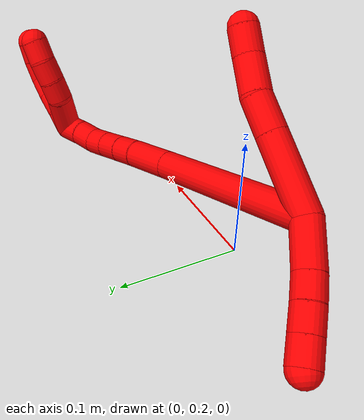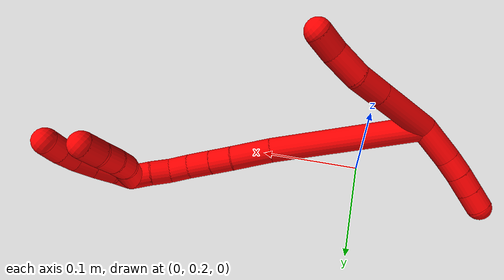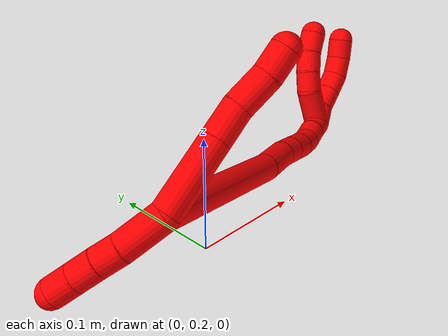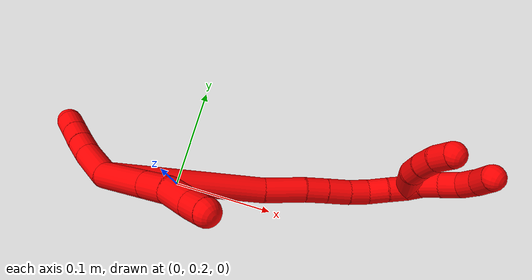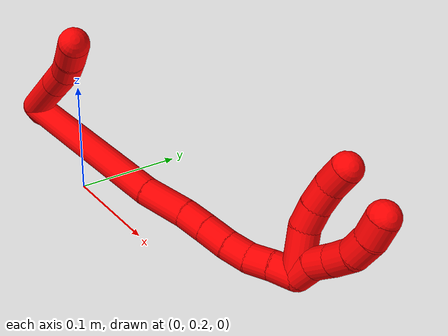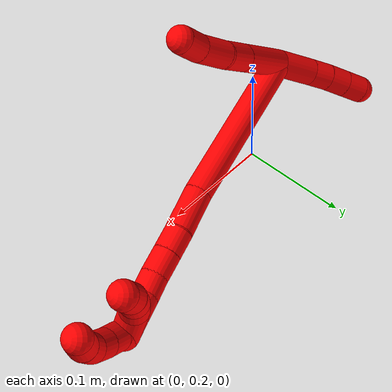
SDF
<sdf version="1.7">
 <world name="default">
  <model name="2">
   <static>0</static>
   <link name="2">
    <collision name="collision-cylinder-e_1_2_8">
     <pose>-0.001099 -0.009051 -0.030658 2.85454 -0.034361 -0.236669</pose>
     <geometry><cylinder><radius>0.0125</radius><length>0.06397</length></cylinder></geometry>
     <surface>
      <friction><ode><mu>1.16</mu><mu2>1.16</mu2><slip1>0</slip1><slip2>0</slip2></ode></friction>
      <contact><ode><kp>1e+06</kp><kd>1</kd><max_vel>0</max_vel><min_depth>0.001</min_depth></ode></contact>
     </surface>
    </collision>
    <visual name="visual-cylinder-e_1_2_8">
     <pose>-0.001099 -0.009051 -0.030658 2.85454 -0.034361 -0.236669</pose>
     <geometry><cylinder><radius>0.0125</radius><length>0.06397</length></cylinder></geometry>
     <material><ambient>1 0 0 1</ambient></material>
    </visual>
    <collision name="collision-cylinder-e_2_8_9">
     <pose>-0.002717 -0.022327 -0.07567 2.85525 -0.034727 -0.239768</pose>
     <geometry><cylinder><radius>0.0125</radius><length>0.029943</length></cylinder></geometry>
     <surface>
      <friction><ode><mu>1.16</mu><mu2>1.16</mu2><slip1>0</slip1><slip2>0</slip2></ode></friction>
      <contact><ode><kp>1e+06</kp><kd>1</kd><max_vel>0</max_vel><min_depth>0.001</min_depth></ode></contact>
     </surface>
    </collision>
    <visual name="visual-cylinder-e_2_8_9">
     <pose>-0.002717 -0.022327 -0.07567 2.85525 -0.034727 -0.239768</pose>
     <geometry><cylinder><radius>0.0125</radius><length>0.029943</length></cylinder></geometry>
     <material><ambient>1 0 0 1</ambient></material>
    </visual>
    <collision name="collision-cylinder-e_3_9_10">
     <pose>-0.004088 -0.027589 -0.105888 3.0764 -0.05345 -1.37343</pose>
     <geometry><cylinder><radius>0.0125</radius><length>0.031841</length></cylinder></geometry>
     <surface>
      <friction><ode><mu>1.16</mu><mu2>1.16</mu2><slip1>0</slip1><slip2>0</slip2></ode></friction>
      <contact><ode><kp>1e+06</kp><kd>1</kd><max_vel>0</max_vel><min_depth>0.001</min_depth></ode></contact>
     </surface>
    </collision>
    <visual name="visual-cylinder-e_3_9_10">
     <pose>-0.004088 -0.027589 -0.105888 3.0764 -0.05345 -1.37343</pose>
     <geometry><cylinder><radius>0.0125</radius><length>0.031841</length></cylinder></geometry>
     <material><ambient>1 0 0 1</ambient></material>
    </visual>
    <collision name="collision-cylinder-e_4_10_6">
     <pose>-0.00748 -0.03056 -0.133446 2.97762 -0.211266 -1.82299</pose>
     <geometry><cylinder><radius>0.0125</radius><length>0.024245</length></cylinder></geometry>
     <surface>
      <friction><ode><mu>1.16</mu><mu2>1.16</mu2><slip1>0</slip1><slip2>0</slip2></ode></friction>
      <contact><ode><kp>1e+06</kp><kd>1</kd><max_vel>0</max_vel><min_depth>0.001</min_depth></ode></contact>
     </surface>
    </collision>
    <visual name="visual-cylinder-e_4_10_6">
     <pose>-0.00748 -0.03056 -0.133446 2.97762 -0.211266 -1.82299</pose>
     <geometry><cylinder><radius>0.0125</radius><length>0.024245</length></cylinder></geometry>
     <material><ambient>1 0 0 1</ambient></material>
    </visual>
    <collision name="collision-cylinder-e_1_2_11">
     <pose>0.000704 -0.002441 0.019232 0.126237 0.036302 0.002295</pose>
     <geometry><cylinder><radius>0.0125</radius><length>0.038799</length></cylinder></geometry>
     <surface>
      <friction><ode><mu>1.16</mu><mu2>1.16</mu2><slip1>0</slip1><slip2>0</slip2></ode></friction>
      <contact><ode><kp>1e+06</kp><kd>1</kd><max_vel>0</max_vel><min_depth>0.001</min_depth></ode></contact>
     </surface>
    </collision>
    <visual name="visual-cylinder-e_1_2_11">
     <pose>0.000704 -0.002441 0.019232 0.126237 0.036302 0.002295</pose>
     <geometry><cylinder><radius>0.0125</radius><length>0.038799</length></cylinder></geometry>
     <material><ambient>1 0 0 1</ambient></material>
    </visual>
    <collision name="collision-cylinder-e_2_11_12">
     <pose>0.001757 -0.007181 0.048277 0.230177 0.034644 0.004005</pose>
     <geometry><cylinder><radius>0.0125</radius><length>0.020168</length></cylinder></geometry>
     <surface>
      <friction><ode><mu>1.16</mu><mu2>1.16</mu2><slip1>0</slip1><slip2>0</slip2></ode></friction>
      <contact><ode><kp>1e+06</kp><kd>1</kd><max_vel>0</max_vel><min_depth>0.001</min_depth></ode></contact>
     </surface>
    </collision>
    <visual name="visual-cylinder-e_2_11_12">
     <pose>0.001757 -0.007181 0.048277 0.230177 0.034644 0.004005</pose>
     <geometry><cylinder><radius>0.0125</radius><length>0.020168</length></cylinder></geometry>
     <material><ambient>1 0 0 1</ambient></material>
    </visual>
    <collision name="collision-cylinder-e_3_12_13">
     <pose>0.003053 -0.011861 0.068028 0.235152 0.092291 0.010909</pose>
     <geometry><cylinder><radius>0.0125</radius><length>0.020528</length></cylinder></geometry>
     <surface>
      <friction><ode><mu>1.16</mu><mu2>1.16</mu2><slip1>0</slip1><slip2>0</slip2></ode></friction>
      <contact><ode><kp>1e+06</kp><kd>1</kd><max_vel>0</max_vel><min_depth>0.001</min_depth></ode></contact>
     </surface>
    </collision>
    <visual name="visual-cylinder-e_3_12_13">
     <pose>0.003053 -0.011861 0.068028 0.235152 0.092291 0.010909</pose>
     <geometry><cylinder><radius>0.0125</radius><length>0.020528</length></cylinder></geometry>
     <material><ambient>1 0 0 1</ambient></material>
    </visual>
    <collision name="collision-cylinder-e_4_13_5">
     <pose>0.004968 -0.016624 0.087892 0.235458 0.094701 0.011209</pose>
     <geometry><cylinder><radius>0.0125</radius><length>0.020505</length></cylinder></geometry>
     <surface>
      <friction><ode><mu>1.16</mu><mu2>1.16</mu2><slip1>0</slip1><slip2>0</slip2></ode></friction>
      <contact><ode><kp>1e+06</kp><kd>1</kd><max_vel>0</max_vel><min_depth>0.001</min_depth></ode></contact>
     </surface>
    </collision>
    <visual name="visual-cylinder-e_4_13_5">
     <pose>0.004968 -0.016624 0.087892 0.235458 0.094701 0.011209</pose>
     <geometry><cylinder><radius>0.0125</radius><length>0.020505</length></cylinder></geometry>
     <material><ambient>1 0 0 1</ambient></material>
    </visual>
    <collision name="collision-cylinder-e_1_2_14">
     <pose>0.058619 -0.02341 -0.042469 2.6378 0.879644 2.14064</pose>
     <geometry><cylinder><radius>0.0125</radius><length>0.152155</length></cylinder></geometry>
     <surface>
      <friction><ode><mu>1.16</mu><mu2>1.16</mu2><slip1>0</slip1><slip2>0</slip2></ode></friction>
      <contact><ode><kp>1e+06</kp><kd>1</kd><max_vel>0</max_vel><min_depth>0.001</min_depth></ode></contact>
     </surface>
    </collision>
    <visual name="visual-cylinder-e_1_2_14">
     <pose>0.058619 -0.02341 -0.042469 2.6378 0.879644 2.14064</pose>
     <geometry><cylinder><radius>0.0125</radius><length>0.152155</length></cylinder></geometry>
     <material><ambient>1 0 0 1</ambient></material>
    </visual>
    <collision name="collision-cylinder-e_2_14_15">
     <pose>0.132 -0.05543 -0.096173 2.48775 0.806431 1.79837</pose>
     <geometry><cylinder><radius>0.0125</radius><length>0.040903</length></cylinder></geometry>
     <surface>
      <friction><ode><mu>1.16</mu><mu2>1.16</mu2><slip1>0</slip1><slip2>0</slip2></ode></friction>
      <contact><ode><kp>1e+06</kp><kd>1</kd><max_vel>0</max_vel><min_depth>0.001</min_depth></ode></contact>
     </surface>
    </collision>
    <visual name="visual-cylinder-e_2_14_15">
     <pose>0.132 -0.05543 -0.096173 2.48775 0.806431 1.79837</pose>
     <geometry><cylinder><radius>0.0125</radius><length>0.040903</length></cylinder></geometry>
     <material><ambient>1 0 0 1</ambient></material>
    </visual>
    <collision name="collision-cylinder-e_3_15_16">
     <pose>0.155422 -0.067852 -0.113328 2.56934 0.888044 2.03383</pose>
     <geometry><cylinder><radius>0.0125</radius><length>0.022324</length></cylinder></geometry>
     <surface>
      <friction><ode><mu>1.16</mu><mu2>1.16</mu2><slip1>0</slip1><slip2>0</slip2></ode></friction>
      <contact><ode><kp>1e+06</kp><kd>1</kd><max_vel>0</max_vel><min_depth>0.001</min_depth></ode></contact>
     </surface>
    </collision>
    <visual name="visual-cylinder-e_3_15_16">
     <pose>0.155422 -0.067852 -0.113328 2.56934 0.888044 2.03383</pose>
     <geometry><cylinder><radius>0.0125</radius><length>0.022324</length></cylinder></geometry>
     <material><ambient>1 0 0 1</ambient></material>
    </visual>
    <collision name="collision-cylinder-e_4_16_17">
     <pose>0.173275 -0.07553 -0.12543 2.58293 0.900373 2.07034</pose>
     <geometry><cylinder><radius>0.0125</radius><length>0.023466</length></cylinder></geometry>
     <surface>
      <friction><ode><mu>1.16</mu><mu2>1.16</mu2><slip1>0</slip1><slip2>0</slip2></ode></friction>
      <contact><ode><kp>1e+06</kp><kd>1</kd><max_vel>0</max_vel><min_depth>0.001</min_depth></ode></contact>
     </surface>
    </collision>
    <visual name="visual-cylinder-e_4_16_17">
     <pose>0.173275 -0.07553 -0.12543 2.58293 0.900373 2.07034</pose>
     <geometry><cylinder><radius>0.0125</radius><length>0.023466</length></cylinder></geometry>
     <material><ambient>1 0 0 1</ambient></material>
    </visual>
    <collision name="collision-cylinder-e_5_17_18">
     <pose>0.190039 -0.083695 -0.137041 2.47174 0.829772 1.80414</pose>
     <geometry><cylinder><radius>0.0125</radius><length>0.020522</length></cylinder></geometry>
     <surface>
      <friction><ode><mu>1.16</mu><mu2>1.16</mu2><slip1>0</slip1><slip2>0</slip2></ode></friction>
      <contact><ode><kp>1e+06</kp><kd>1</kd><max_vel>0</max_vel><min_depth>0.001</min_depth></ode></contact>
     </surface>
    </collision>
    <visual name="visual-cylinder-e_5_17_18">
     <pose>0.190039 -0.083695 -0.137041 2.47174 0.829772 1.80414</pose>
     <geometry><cylinder><radius>0.0125</radius><length>0.020522</length></cylinder></geometry>
     <material><ambient>1 0 0 1</ambient></material>
    </visual>
    <collision name="collision-cylinder-e_6_18_19">
     <pose>0.203129 -0.093332 -0.148992 2.45569 0.579922 1.39218</pose>
     <geometry><cylinder><radius>0.0125</radius><length>0.020146</length></cylinder></geometry>
     <surface>
      <friction><ode><mu>1.16</mu><mu2>1.16</mu2><slip1>0</slip1><slip2>0</slip2></ode></friction>
      <contact><ode><kp>1e+06</kp><kd>1</kd><max_vel>0</max_vel><min_depth>0.001</min_depth></ode></contact>
     </surface>
    </collision>
    <visual name="visual-cylinder-e_6_18_19">
     <pose>0.203129 -0.093332 -0.148992 2.45569 0.579922 1.39218</pose>
     <geometry><cylinder><radius>0.0125</radius><length>0.020146</length></cylinder></geometry>
     <material><ambient>1 0 0 1</ambient></material>
    </visual>
    <collision name="collision-cylinder-e_7_19_1">
     <pose>0.215108 -0.103799 -0.161583 2.44001 0.682409 1.54074</pose>
     <geometry><cylinder><radius>0.0125</radius><length>0.020484</length></cylinder></geometry>
     <surface>
      <friction><ode><mu>1.16</mu><mu2>1.16</mu2><slip1>0</slip1><slip2>0</slip2></ode></friction>
      <contact><ode><kp>1e+06</kp><kd>1</kd><max_vel>0</max_vel><min_depth>0.001</min_depth></ode></contact>
     </surface>
    </collision>
    <visual name="visual-cylinder-e_7_19_1">
     <pose>0.215108 -0.103799 -0.161583 2.44001 0.682409 1.54074</pose>
     <geometry><cylinder><radius>0.0125</radius><length>0.020484</length></cylinder></geometry>
     <material><ambient>1 0 0 1</ambient></material>
    </visual>
    <collision name="collision-cylinder-e_1_1_20">
     <pose>0.20534 -0.117478 -0.174834 2.26936 -0.968199 -1.6912</pose>
     <geometry><cylinder><radius>0.0125</radius><length>0.039393</length></cylinder></geometry>
     <surface>
      <friction><ode><mu>1.16</mu><mu2>1.16</mu2><slip1>0</slip1><slip2>0</slip2></ode></friction>
      <contact><ode><kp>1e+06</kp><kd>1</kd><max_vel>0</max_vel><min_depth>0.001</min_depth></ode></contact>
     </surface>
    </collision>
    <visual name="visual-cylinder-e_1_1_20">
     <pose>0.20534 -0.117478 -0.174834 2.26936 -0.968199 -1.6912</pose>
     <geometry><cylinder><radius>0.0125</radius><length>0.039393</length></cylinder></geometry>
     <material><ambient>1 0 0 1</ambient></material>
    </visual>
    <collision name="collision-cylinder-e_2_20_21">
     <pose>0.183102 -0.131285 -0.188042 2.42437 -0.64441 -1.45526</pose>
     <geometry><cylinder><radius>0.0125</radius><length>0.020011</length></cylinder></geometry>
     <surface>
      <friction><ode><mu>1.16</mu><mu2>1.16</mu2><slip1>0</slip1><slip2>0</slip2></ode></friction>
      <contact><ode><kp>1e+06</kp><kd>1</kd><max_vel>0</max_vel><min_depth>0.001</min_depth></ode></contact>
     </surface>
    </collision>
    <visual name="visual-cylinder-e_2_20_21">
     <pose>0.183102 -0.131285 -0.188042 2.42437 -0.64441 -1.45526</pose>
     <geometry><cylinder><radius>0.0125</radius><length>0.020011</length></cylinder></geometry>
     <material><ambient>1 0 0 1</ambient></material>
    </visual>
    <collision name="collision-cylinder-e_3_21_22">
     <pose>0.172096 -0.142032 -0.201084 2.47747 -0.511171 -1.2969</pose>
     <geometry><cylinder><radius>0.0125</radius><length>0.020424</length></cylinder></geometry>
     <surface>
      <friction><ode><mu>1.16</mu><mu2>1.16</mu2><slip1>0</slip1><slip2>0</slip2></ode></friction>
      <contact><ode><kp>1e+06</kp><kd>1</kd><max_vel>0</max_vel><min_depth>0.001</min_depth></ode></contact>
     </surface>
    </collision>
    <visual name="visual-cylinder-e_3_21_22">
     <pose>0.172096 -0.142032 -0.201084 2.47747 -0.511171 -1.2969</pose>
     <geometry><cylinder><radius>0.0125</radius><length>0.020424</length></cylinder></geometry>
     <material><ambient>1 0 0 1</ambient></material>
    </visual>
    <collision name="collision-cylinder-e_4_22_4">
     <pose>0.163546 -0.152093 -0.216355 2.63601 -0.360061 -1.22757</pose>
     <geometry><cylinder><radius>0.0125</radius><length>0.020172</length></cylinder></geometry>
     <surface>
      <friction><ode><mu>1.16</mu><mu2>1.16</mu2><slip1>0</slip1><slip2>0</slip2></ode></friction>
      <contact><ode><kp>1e+06</kp><kd>1</kd><max_vel>0</max_vel><min_depth>0.001</min_depth></ode></contact>
     </surface>
    </collision>
    <visual name="visual-cylinder-e_4_22_4">
     <pose>0.163546 -0.152093 -0.216355 2.63601 -0.360061 -1.22757</pose>
     <geometry><cylinder><radius>0.0125</radius><length>0.020172</length></cylinder></geometry>
     <material><ambient>1 0 0 1</ambient></material>
    </visual>
    <collision name="collision-cylinder-e_1_1_23">
     <pose>0.218831 -0.114044 -0.175801 2.58096 -0.277099 -0.902095</pose>
     <geometry><cylinder><radius>0.0125</radius><length>0.02</length></cylinder></geometry>
     <surface>
      <friction><ode><mu>1.16</mu><mu2>1.16</mu2><slip1>0</slip1><slip2>0</slip2></ode></friction>
      <contact><ode><kp>1e+06</kp><kd>1</kd><max_vel>0</max_vel><min_depth>0.001</min_depth></ode></contact>
     </surface>
    </collision>
    <visual name="visual-cylinder-e_1_1_23">
     <pose>0.218831 -0.114044 -0.175801 2.58096 -0.277099 -0.902095</pose>
     <geometry><cylinder><radius>0.0125</radius><length>0.02</length></cylinder></geometry>
     <material><ambient>1 0 0 1</ambient></material>
    </visual>
    <collision name="collision-cylinder-e_2_23_24">
     <pose>0.216471 -0.123499 -0.192948 2.69223 0.037521 0.163829</pose>
     <geometry><cylinder><radius>0.0125</radius><length>0.02</length></cylinder></geometry>
     <surface>
      <friction><ode><mu>1.16</mu><mu2>1.16</mu2><slip1>0</slip1><slip2>0</slip2></ode></friction>
      <contact><ode><kp>1e+06</kp><kd>1</kd><max_vel>0</max_vel><min_depth>0.001</min_depth></ode></contact>
     </surface>
    </collision>
    <visual name="visual-cylinder-e_2_23_24">
     <pose>0.216471 -0.123499 -0.192948 2.69223 0.037521 0.163829</pose>
     <geometry><cylinder><radius>0.0125</radius><length>0.02</length></cylinder></geometry>
     <material><ambient>1 0 0 1</ambient></material>
    </visual>
    <collision name="collision-cylinder-e_3_24_25">
     <pose>0.216413 -0.131988 -0.211037 2.71343 -0.043317 -0.198615</pose>
     <geometry><cylinder><radius>0.0125</radius><length>0.02</length></cylinder></geometry>
     <surface>
      <friction><ode><mu>1.16</mu><mu2>1.16</mu2><slip1>0</slip1><slip2>0</slip2></ode></friction>
      <contact><ode><kp>1e+06</kp><kd>1</kd><max_vel>0</max_vel><min_depth>0.001</min_depth></ode></contact>
     </surface>
    </collision>
    <visual name="visual-cylinder-e_3_24_25">
     <pose>0.216413 -0.131988 -0.211037 2.71343 -0.043317 -0.198615</pose>
     <geometry><cylinder><radius>0.0125</radius><length>0.02</length></cylinder></geometry>
     <material><ambient>1 0 0 1</ambient></material>
    </visual>
    <collision name="collision-cylinder-e_4_25_26">
     <pose>0.212331 -0.140719 -0.22823 2.62691 -0.373571 -1.24556</pose>
     <geometry><cylinder><radius>0.0125</radius><length>0.02</length></cylinder></geometry>
     <surface>
      <friction><ode><mu>1.16</mu><mu2>1.16</mu2><slip1>0</slip1><slip2>0</slip2></ode></friction>
      <contact><ode><kp>1e+06</kp><kd>1</kd><max_vel>0</max_vel><min_depth>0.001</min_depth></ode></contact>
     </surface>
    </collision>
    <visual name="visual-cylinder-e_4_25_26">
     <pose>0.212331 -0.140719 -0.22823 2.62691 -0.373571 -1.24556</pose>
     <geometry><cylinder><radius>0.0125</radius><length>0.02</length></cylinder></geometry>
     <material><ambient>1 0 0 1</ambient></material>
    </visual>
    <collision name="collision-cylinder-e_5_26_3">
     <pose>0.203035 -0.149549 -0.243411 2.60105 -0.599914 -1.68065</pose>
     <geometry><cylinder><radius>0.0125</radius><length>0.02</length></cylinder></geometry>
     <surface>
      <friction><ode><mu>1.16</mu><mu2>1.16</mu2><slip1>0</slip1><slip2>0</slip2></ode></friction>
      <contact><ode><kp>1e+06</kp><kd>1</kd><max_vel>0</max_vel><min_depth>0.001</min_depth></ode></contact>
     </surface>
    </collision>
    <visual name="visual-cylinder-e_5_26_3">
     <pose>0.203035 -0.149549 -0.243411 2.60105 -0.599914 -1.68065</pose>
     <geometry><cylinder><radius>0.0125</radius><length>0.02</length></cylinder></geometry>
     <material><ambient>1 0 0 1</ambient></material>
    </visual>
    <collision name="collision-sphere-3">
     <pose>0.19739 -0.153797 -0.250488 0 -0 0</pose>
     <geometry><sphere><radius>0.0125</radius></sphere></geometry>
     <surface>
      <friction><ode><mu>1.16</mu><mu2>1.16</mu2><slip1>0</slip1><slip2>0</slip2></ode></friction>
      <contact><ode><kp>1e+06</kp><kd>1</kd><max_vel>0</max_vel><min_depth>0.001</min_depth></ode></contact>
     </surface>
    </collision>
    <visual name="visual-sphere-3">
     <pose>0.19739 -0.153797 -0.250488 0 -0 0</pose>
     <geometry><sphere><radius>0.0125</radius></sphere></geometry>
     <material><ambient>1 0 0 1</ambient></material>
    </visual>
    <collision name="collision-sphere-26">
     <pose>0.208681 -0.145302 -0.236334 0 -0 0</pose>
     <geometry><sphere><radius>0.0125</radius></sphere></geometry>
     <surface>
      <friction><ode><mu>1.16</mu><mu2>1.16</mu2><slip1>0</slip1><slip2>0</slip2></ode></friction>
      <contact><ode><kp>1e+06</kp><kd>1</kd><max_vel>0</max_vel><min_depth>0.001</min_depth></ode></contact>
     </surface>
    </collision>
    <visual name="visual-sphere-26">
     <pose>0.208681 -0.145302 -0.236334 0 -0 0</pose>
     <geometry><sphere><radius>0.0125</radius></sphere></geometry>
     <material><ambient>1 0 0 1</ambient></material>
    </visual>
    <collision name="collision-sphere-25">
     <pose>0.21598 -0.136136 -0.220126 0 -0 0</pose>
     <geometry><sphere><radius>0.0125</radius></sphere></geometry>
     <surface>
      <friction><ode><mu>1.16</mu><mu2>1.16</mu2><slip1>0</slip1><slip2>0</slip2></ode></friction>
      <contact><ode><kp>1e+06</kp><kd>1</kd><max_vel>0</max_vel><min_depth>0.001</min_depth></ode></contact>
     </surface>
    </collision>
    <visual name="visual-sphere-25">
     <pose>0.21598 -0.136136 -0.220126 0 -0 0</pose>
     <geometry><sphere><radius>0.0125</radius></sphere></geometry>
     <material><ambient>1 0 0 1</ambient></material>
    </visual>
    <collision name="collision-sphere-24">
     <pose>0.216846 -0.12784 -0.201948 0 -0 0</pose>
     <geometry><sphere><radius>0.0125</radius></sphere></geometry>
     <surface>
      <friction><ode><mu>1.16</mu><mu2>1.16</mu2><slip1>0</slip1><slip2>0</slip2></ode></friction>
      <contact><ode><kp>1e+06</kp><kd>1</kd><max_vel>0</max_vel><min_depth>0.001</min_depth></ode></contact>
     </surface>
    </collision>
    <visual name="visual-sphere-24">
     <pose>0.216846 -0.12784 -0.201948 0 -0 0</pose>
     <geometry><sphere><radius>0.0125</radius></sphere></geometry>
     <material><ambient>1 0 0 1</ambient></material>
    </visual>
    <collision name="collision-sphere-23">
     <pose>0.216096 -0.119158 -0.183947 0 -0 0</pose>
     <geometry><sphere><radius>0.0125</radius></sphere></geometry>
     <surface>
      <friction><ode><mu>1.16</mu><mu2>1.16</mu2><slip1>0</slip1><slip2>0</slip2></ode></friction>
      <contact><ode><kp>1e+06</kp><kd>1</kd><max_vel>0</max_vel><min_depth>0.001</min_depth></ode></contact>
     </surface>
    </collision>
    <visual name="visual-sphere-23">
     <pose>0.216096 -0.119158 -0.183947 0 -0 0</pose>
     <geometry><sphere><radius>0.0125</radius></sphere></geometry>
     <material><ambient>1 0 0 1</ambient></material>
    </visual>
    <collision name="collision-sphere-4">
     <pose>0.159993 -0.156665 -0.224614 0 -0 0</pose>
     <geometry><sphere><radius>0.0125</radius></sphere></geometry>
     <surface>
      <friction><ode><mu>1.16</mu><mu2>1.16</mu2><slip1>0</slip1><slip2>0</slip2></ode></friction>
      <contact><ode><kp>1e+06</kp><kd>1</kd><max_vel>0</max_vel><min_depth>0.001</min_depth></ode></contact>
     </surface>
    </collision>
    <visual name="visual-sphere-4">
     <pose>0.159993 -0.156665 -0.224614 0 -0 0</pose>
     <geometry><sphere><radius>0.0125</radius></sphere></geometry>
     <material><ambient>1 0 0 1</ambient></material>
    </visual>
    <collision name="collision-sphere-22">
     <pose>0.1671 -0.147522 -0.208097 0 -0 0</pose>
     <geometry><sphere><radius>0.0125</radius></sphere></geometry>
     <surface>
      <friction><ode><mu>1.16</mu><mu2>1.16</mu2><slip1>0</slip1><slip2>0</slip2></ode></friction>
      <contact><ode><kp>1e+06</kp><kd>1</kd><max_vel>0</max_vel><min_depth>0.001</min_depth></ode></contact>
     </surface>
    </collision>
    <visual name="visual-sphere-22">
     <pose>0.1671 -0.147522 -0.208097 0 -0 0</pose>
     <geometry><sphere><radius>0.0125</radius></sphere></geometry>
     <material><ambient>1 0 0 1</ambient></material>
    </visual>
    <collision name="collision-sphere-21">
     <pose>0.177091 -0.136542 -0.19407 0 -0 0</pose>
     <geometry><sphere><radius>0.0125</radius></sphere></geometry>
     <surface>
      <friction><ode><mu>1.16</mu><mu2>1.16</mu2><slip1>0</slip1><slip2>0</slip2></ode></friction>
      <contact><ode><kp>1e+06</kp><kd>1</kd><max_vel>0</max_vel><min_depth>0.001</min_depth></ode></contact>
     </surface>
    </collision>
    <visual name="visual-sphere-21">
     <pose>0.177091 -0.136542 -0.19407 0 -0 0</pose>
     <geometry><sphere><radius>0.0125</radius></sphere></geometry>
     <material><ambient>1 0 0 1</ambient></material>
    </visual>
    <collision name="collision-sphere-20">
     <pose>0.189112 -0.126027 -0.182014 0 -0 0</pose>
     <geometry><sphere><radius>0.0125</radius></sphere></geometry>
     <surface>
      <friction><ode><mu>1.16</mu><mu2>1.16</mu2><slip1>0</slip1><slip2>0</slip2></ode></friction>
      <contact><ode><kp>1e+06</kp><kd>1</kd><max_vel>0</max_vel><min_depth>0.001</min_depth></ode></contact>
     </surface>
    </collision>
    <visual name="visual-sphere-20">
     <pose>0.189112 -0.126027 -0.182014 0 -0 0</pose>
     <geometry><sphere><radius>0.0125</radius></sphere></geometry>
     <material><ambient>1 0 0 1</ambient></material>
    </visual>
    <collision name="collision-sphere-11">
     <pose>0.001408 -0.004882 0.038465 0 -0 0</pose>
     <geometry><sphere><radius>0.0125</radius></sphere></geometry>
     <surface>
      <friction><ode><mu>1.16</mu><mu2>1.16</mu2><slip1>0</slip1><slip2>0</slip2></ode></friction>
      <contact><ode><kp>1e+06</kp><kd>1</kd><max_vel>0</max_vel><min_depth>0.001</min_depth></ode></contact>
     </surface>
    </collision>
    <visual name="visual-sphere-11">
     <pose>0.001408 -0.004882 0.038465 0 -0 0</pose>
     <geometry><sphere><radius>0.0125</radius></sphere></geometry>
     <material><ambient>1 0 0 1</ambient></material>
    </visual>
    <collision name="collision-sphere-6">
     <pose>-0.010023 -0.032494 -0.14514 0 -0 0</pose>
     <geometry><sphere><radius>0.0125</radius></sphere></geometry>
     <surface>
      <friction><ode><mu>1.16</mu><mu2>1.16</mu2><slip1>0</slip1><slip2>0</slip2></ode></friction>
      <contact><ode><kp>1e+06</kp><kd>1</kd><max_vel>0</max_vel><min_depth>0.001</min_depth></ode></contact>
     </surface>
    </collision>
    <visual name="visual-sphere-6">
     <pose>-0.010023 -0.032494 -0.14514 0 -0 0</pose>
     <geometry><sphere><radius>0.0125</radius></sphere></geometry>
     <material><ambient>1 0 0 1</ambient></material>
    </visual>
    <collision name="collision-sphere-10">
     <pose>-0.004938 -0.028625 -0.121752 0 -0 0</pose>
     <geometry><sphere><radius>0.0125</radius></sphere></geometry>
     <surface>
      <friction><ode><mu>1.16</mu><mu2>1.16</mu2><slip1>0</slip1><slip2>0</slip2></ode></friction>
      <contact><ode><kp>1e+06</kp><kd>1</kd><max_vel>0</max_vel><min_depth>0.001</min_depth></ode></contact>
     </surface>
    </collision>
    <visual name="visual-sphere-10">
     <pose>-0.004938 -0.028625 -0.121752 0 -0 0</pose>
     <geometry><sphere><radius>0.0125</radius></sphere></geometry>
     <material><ambient>1 0 0 1</ambient></material>
    </visual>
    <collision name="collision-sphere-9">
     <pose>-0.003237 -0.026553 -0.090023 0 -0 0</pose>
     <geometry><sphere><radius>0.0125</radius></sphere></geometry>
     <surface>
      <friction><ode><mu>1.16</mu><mu2>1.16</mu2><slip1>0</slip1><slip2>0</slip2></ode></friction>
      <contact><ode><kp>1e+06</kp><kd>1</kd><max_vel>0</max_vel><min_depth>0.001</min_depth></ode></contact>
     </surface>
    </collision>
    <visual name="visual-sphere-9">
     <pose>-0.003237 -0.026553 -0.090023 0 -0 0</pose>
     <geometry><sphere><radius>0.0125</radius></sphere></geometry>
     <material><ambient>1 0 0 1</ambient></material>
    </visual>
    <collision name="collision-sphere-2">
     <geometry><sphere><radius>0.0125</radius></sphere></geometry>
     <surface>
      <friction><ode><mu>1.16</mu><mu2>1.16</mu2><slip1>0</slip1><slip2>0</slip2></ode></friction>
      <contact><ode><kp>1e+06</kp><kd>1</kd><max_vel>0</max_vel><min_depth>0.001</min_depth></ode></contact>
     </surface>
    </collision>
    <visual name="visual-sphere-2">
     <geometry><sphere><radius>0.0125</radius></sphere></geometry>
     <material><ambient>1 0 0 1</ambient></material>
    </visual>
    <collision name="collision-sphere-19">
     <pose>0.208649 -0.098669 -0.155512 0 -0 0</pose>
     <geometry><sphere><radius>0.0125</radius></sphere></geometry>
     <surface>
      <friction><ode><mu>1.16</mu><mu2>1.16</mu2><slip1>0</slip1><slip2>0</slip2></ode></friction>
      <contact><ode><kp>1e+06</kp><kd>1</kd><max_vel>0</max_vel><min_depth>0.001</min_depth></ode></contact>
     </surface>
    </collision>
    <visual name="visual-sphere-19">
     <pose>0.208649 -0.098669 -0.155512 0 -0 0</pose>
     <geometry><sphere><radius>0.0125</radius></sphere></geometry>
     <material><ambient>1 0 0 1</ambient></material>
    </visual>
    <collision name="collision-sphere-8">
     <pose>-0.002198 -0.018101 -0.061316 0 -0 0</pose>
     <geometry><sphere><radius>0.0125</radius></sphere></geometry>
     <surface>
      <friction><ode><mu>1.16</mu><mu2>1.16</mu2><slip1>0</slip1><slip2>0</slip2></ode></friction>
      <contact><ode><kp>1e+06</kp><kd>1</kd><max_vel>0</max_vel><min_depth>0.001</min_depth></ode></contact>
     </surface>
    </collision>
    <visual name="visual-sphere-8">
     <pose>-0.002198 -0.018101 -0.061316 0 -0 0</pose>
     <geometry><sphere><radius>0.0125</radius></sphere></geometry>
     <material><ambient>1 0 0 1</ambient></material>
    </visual>
    <collision name="collision-sphere-12">
     <pose>0.002107 -0.00948 0.058089 0 -0 0</pose>
     <geometry><sphere><radius>0.0125</radius></sphere></geometry>
     <surface>
      <friction><ode><mu>1.16</mu><mu2>1.16</mu2><slip1>0</slip1><slip2>0</slip2></ode></friction>
      <contact><ode><kp>1e+06</kp><kd>1</kd><max_vel>0</max_vel><min_depth>0.001</min_depth></ode></contact>
     </surface>
    </collision>
    <visual name="visual-sphere-12">
     <pose>0.002107 -0.00948 0.058089 0 -0 0</pose>
     <geometry><sphere><radius>0.0125</radius></sphere></geometry>
     <material><ambient>1 0 0 1</ambient></material>
    </visual>
    <collision name="collision-sphere-13">
     <pose>0.003999 -0.014243 0.077968 0 -0 0</pose>
     <geometry><sphere><radius>0.0125</radius></sphere></geometry>
     <surface>
      <friction><ode><mu>1.16</mu><mu2>1.16</mu2><slip1>0</slip1><slip2>0</slip2></ode></friction>
      <contact><ode><kp>1e+06</kp><kd>1</kd><max_vel>0</max_vel><min_depth>0.001</min_depth></ode></contact>
     </surface>
    </collision>
    <visual name="visual-sphere-13">
     <pose>0.003999 -0.014243 0.077968 0 -0 0</pose>
     <geometry><sphere><radius>0.0125</radius></sphere></geometry>
     <material><ambient>1 0 0 1</ambient></material>
    </visual>
    <collision name="collision-sphere-5">
     <pose>0.005938 -0.019005 0.097817 0 -0 0</pose>
     <geometry><sphere><radius>0.0125</radius></sphere></geometry>
     <surface>
      <friction><ode><mu>1.16</mu><mu2>1.16</mu2><slip1>0</slip1><slip2>0</slip2></ode></friction>
      <contact><ode><kp>1e+06</kp><kd>1</kd><max_vel>0</max_vel><min_depth>0.001</min_depth></ode></contact>
     </surface>
    </collision>
    <visual name="visual-sphere-5">
     <pose>0.005938 -0.019005 0.097817 0 -0 0</pose>
     <geometry><sphere><radius>0.0125</radius></sphere></geometry>
     <material><ambient>1 0 0 1</ambient></material>
    </visual>
    <collision name="collision-sphere-14">
     <pose>0.117238 -0.046821 -0.084938 0 -0 0</pose>
     <geometry><sphere><radius>0.0125</radius></sphere></geometry>
     <surface>
      <friction><ode><mu>1.16</mu><mu2>1.16</mu2><slip1>0</slip1><slip2>0</slip2></ode></friction>
      <contact><ode><kp>1e+06</kp><kd>1</kd><max_vel>0</max_vel><min_depth>0.001</min_depth></ode></contact>
     </surface>
    </collision>
    <visual name="visual-sphere-14">
     <pose>0.117238 -0.046821 -0.084938 0 -0 0</pose>
     <geometry><sphere><radius>0.0125</radius></sphere></geometry>
     <material><ambient>1 0 0 1</ambient></material>
    </visual>
    <collision name="collision-sphere-15">
     <pose>0.146762 -0.064039 -0.107407 0 -0 0</pose>
     <geometry><sphere><radius>0.0125</radius></sphere></geometry>
     <surface>
      <friction><ode><mu>1.16</mu><mu2>1.16</mu2><slip1>0</slip1><slip2>0</slip2></ode></friction>
      <contact><ode><kp>1e+06</kp><kd>1</kd><max_vel>0</max_vel><min_depth>0.001</min_depth></ode></contact>
     </surface>
    </collision>
    <visual name="visual-sphere-15">
     <pose>0.146762 -0.064039 -0.107407 0 -0 0</pose>
     <geometry><sphere><radius>0.0125</radius></sphere></geometry>
     <material><ambient>1 0 0 1</ambient></material>
    </visual>
    <collision name="collision-sphere-16">
     <pose>0.164082 -0.071666 -0.119248 0 -0 0</pose>
     <geometry><sphere><radius>0.0125</radius></sphere></geometry>
     <surface>
      <friction><ode><mu>1.16</mu><mu2>1.16</mu2><slip1>0</slip1><slip2>0</slip2></ode></friction>
      <contact><ode><kp>1e+06</kp><kd>1</kd><max_vel>0</max_vel><min_depth>0.001</min_depth></ode></contact>
     </surface>
    </collision>
    <visual name="visual-sphere-16">
     <pose>0.164082 -0.071666 -0.119248 0 -0 0</pose>
     <geometry><sphere><radius>0.0125</radius></sphere></geometry>
     <material><ambient>1 0 0 1</ambient></material>
    </visual>
    <collision name="collision-sphere-17">
     <pose>0.182469 -0.079394 -0.131611 0 -0 0</pose>
     <geometry><sphere><radius>0.0125</radius></sphere></geometry>
     <surface>
      <friction><ode><mu>1.16</mu><mu2>1.16</mu2><slip1>0</slip1><slip2>0</slip2></ode></friction>
      <contact><ode><kp>1e+06</kp><kd>1</kd><max_vel>0</max_vel><min_depth>0.001</min_depth></ode></contact>
     </surface>
    </collision>
    <visual name="visual-sphere-17">
     <pose>0.182469 -0.079394 -0.131611 0 -0 0</pose>
     <geometry><sphere><radius>0.0125</radius></sphere></geometry>
     <material><ambient>1 0 0 1</ambient></material>
    </visual>
    <collision name="collision-sphere-18">
     <pose>0.197609 -0.087995 -0.142471 0 -0 0</pose>
     <geometry><sphere><radius>0.0125</radius></sphere></geometry>
     <surface>
      <friction><ode><mu>1.16</mu><mu2>1.16</mu2><slip1>0</slip1><slip2>0</slip2></ode></friction>
      <contact><ode><kp>1e+06</kp><kd>1</kd><max_vel>0</max_vel><min_depth>0.001</min_depth></ode></contact>
     </surface>
    </collision>
    <visual name="visual-sphere-18">
     <pose>0.197609 -0.087995 -0.142471 0 -0 0</pose>
     <geometry><sphere><radius>0.0125</radius></sphere></geometry>
     <material><ambient>1 0 0 1</ambient></material>
    </visual>
    <collision name="collision-sphere-1">
     <pose>0.221567 -0.108929 -0.167654 0 -0 0</pose>
     <geometry><sphere><radius>0.0125</radius></sphere></geometry>
     <surface>
      <friction><ode><mu>1.16</mu><mu2>1.16</mu2><slip1>0</slip1><slip2>0</slip2></ode></friction>
      <contact><ode><kp>1e+06</kp><kd>1</kd><max_vel>0</max_vel><min_depth>0.001</min_depth></ode></contact>
     </surface>
    </collision>
    <visual name="visual-sphere-1">
     <pose>0.221567 -0.108929 -0.167654 0 -0 0</pose>
     <geometry><sphere><radius>0.0125</radius></sphere></geometry>
     <material><ambient>1 0 0 1</ambient></material>
    </visual>
    <inertial>
     <pose>0.098567 -0.059935 -0.094744 0 -0 0</pose>
     <mass>0.75</mass>
     <inertia>
      <ixx>9.5e-05</ixx>
      <ixy>0</ixy>
      <ixz>0</ixz>
      <iyy>0.00036</iyy>
      <iyz>0</iyz>
      <izz>-0.000142</izz>
     </inertia>
    </inertial>
   </link>
   <pose>-0.054944 0.182583 0.066823 -2.71752 0.910496 0.172745</pose>
  </model>
 </world>
</sdf>
